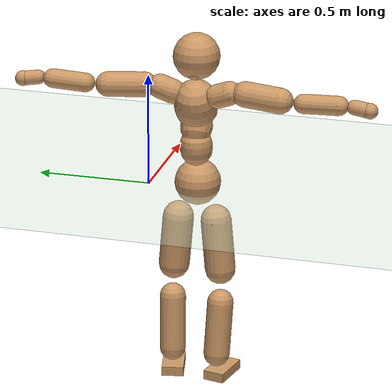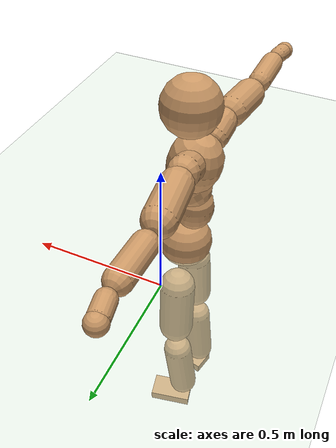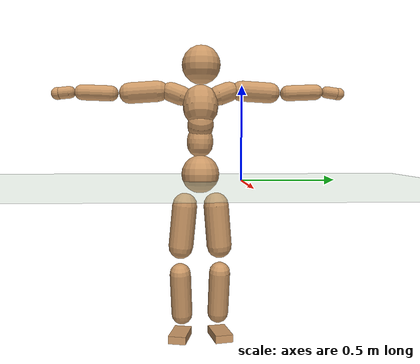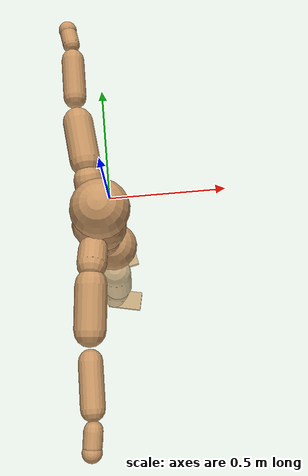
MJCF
<mujoco model="humanoid">
  <compiler coordinate="local"/>
  <default>
    <joint damping="0.0" armature="0.01" stiffness="0.0" limited="true"/>
    <geom conaffinity="1" condim="3" contype="7" margin="0.001" rgba="0.8 0.6 .4 1"/>
  </default>
  <asset>
    <texture type="skybox" builtin="gradient" rgb1=".4 .5 .6" rgb2="0 0 0" width="100" height="100"/>
    <texture builtin="flat" height="1278" mark="cross" markrgb="1 1 1" name="texgeom" random="0.01" rgb1="0.8 0.6 0.4" rgb2="0.8 0.6 0.4" type="cube" width="127"/>
    <texture builtin="checker" height="100" name="texplane" rgb1="0 0 0" rgb2="0.8 0.8 0.8" type="2d" width="100"/>
    <material name="MatPlane" reflectance="0.5" shininess="1" specular="1" texrepeat="60 60" texture="texplane"/>
    <material name="geom" texture="texgeom" texuniform="true"/>
  </asset>
  <worldbody>
    <light cutoff="100" diffuse="1 1 1" dir="-0 0 -1.3" directional="true" exponent="1" pos="0 0 1.3" specular=".1 .1 .1"/>
    <geom conaffinity="1" condim="3" name="floor" pos="0 0 0" rgba="0.8 0.9 0.8 1" size="100 100 .2" type="plane" material="MatPlane"/>
    <body name="Pelvis" pos="0.0006 -0.2204 0.0337">
      <freejoint name="Pelvis"/>
      <geom type="sphere" contype="1" conaffinity="1" density="500" size="0.1008" pos="0.0000 0.0000 0.0000" name="Pelvis"/>
      <body name="L_Hip" pos="-0.0066 0.0795 -0.0932">
        <joint name="L_Hip_x" type="hinge" pos="0 0 0" axis="1 0 0" stiffness="800" damping="80" armature="0.02" range="-180.0000 180.0000"/>
        <joint name="L_Hip_y" type="hinge" pos="0 0 0" axis="0 1 0" stiffness="800" damping="80" armature="0.02" range="-180.0000 180.0000"/>
        <joint name="L_Hip_z" type="hinge" pos="0 0 0" axis="0 0 1" stiffness="800" damping="80" armature="0.02" range="-180.0000 180.0000"/>
        <geom type="capsule" contype="1" conaffinity="1" density="500" fromto="-0.0019 0.0059 -0.0745 -0.0076 0.0237 -0.2981" size="0.0675" name="L_Hip"/>
        <body name="L_Knee" pos="-0.0095 0.0296 -0.3726">
          <joint name="L_Knee_x" type="hinge" pos="0 0 0" axis="1 0 0" stiffness="800" damping="80" armature="0.02" range="-180.0000 180.0000"/>
          <joint name="L_Knee_y" type="hinge" pos="0 0 0" axis="0 1 0" stiffness="800" damping="80" armature="0.02" range="-180.0000 180.0000"/>
          <joint name="L_Knee_z" type="hinge" pos="0 0 0" axis="0 0 1" stiffness="800" damping="80" armature="0.02" range="-180.0000 180.0000"/>
          <geom type="capsule" contype="1" conaffinity="1" density="500" fromto="-0.0097 -0.0024 -0.0787 -0.0388 -0.0094 -0.3147" size="0.0577" name="L_Knee"/>
          <body name="L_Ankle" pos="-0.0485 -0.0118 -0.3934">
            <joint name="L_Ankle_x" type="hinge" pos="0 0 0" axis="1 0 0" stiffness="800" damping="80" armature="0.02" range="-180.0000 180.0000"/>
            <joint name="L_Ankle_y" type="hinge" pos="0 0 0" axis="0 1 0" stiffness="800" damping="80" armature="0.02" range="-180.0000 180.0000"/>
            <joint name="L_Ankle_z" type="hinge" pos="0 0 0" axis="0 0 1" stiffness="800" damping="80" armature="0.02" range="-180.0000 180.0000"/>
            <geom type="box" contype="1" conaffinity="1" density="500" pos="0.0591 0.0127 -0.0282" size="0.085 0.0485 0.0211" quat="0.9944 0.0000 0.0000 0.1060" name="L_Ankle"/>
            <body name="L_Toe" pos="0.1182 0.0255 -0.0564">
              <joint name="L_Toe_x" type="hinge" pos="0 0 0" axis="1 0 0" stiffness="500" damping="50" armature="0.02" range="-180.0000 180.0000"/>
              <joint name="L_Toe_y" type="hinge" pos="0 0 0" axis="0 1 0" stiffness="500" damping="50" armature="0.02" range="-180.0000 180.0000"/>
              <joint name="L_Toe_z" type="hinge" pos="0 0 0" axis="0 0 1" stiffness="500" damping="50" armature="0.02" range="-180.0000 180.0000"/>
              <geom type="box" contype="1" conaffinity="1" density="500" pos="0.0000 0.0000 0.0282" size="0.001 0.0024 0.0011" quat="0.9937 0.0000 0.0000 0.1122" name="L_Toe"/>
            </body>
          </body>
        </body>
      </body>
      <body name="R_Hip" pos="-0.0034 -0.0767 -0.0925">
        <joint name="R_Hip_x" type="hinge" pos="0 0 0" axis="1 0 0" stiffness="800" damping="80" armature="0.02" range="-180.0000 180.0000"/>
        <joint name="R_Hip_y" type="hinge" pos="0 0 0" axis="0 1 0" stiffness="800" damping="80" armature="0.02" range="-180.0000 180.0000"/>
        <joint name="R_Hip_z" type="hinge" pos="0 0 0" axis="0 0 1" stiffness="800" damping="80" armature="0.02" range="-180.0000 180.0000"/>
        <geom type="capsule" contype="1" conaffinity="1" density="500" fromto="-0.0024 -0.0072 -0.0758 -0.0096 -0.0289 -0.3032" size="0.0668" name="R_Hip"/>
        <body name="R_Knee" pos="-0.012 -0.0361 -0.3791">
          <joint name="R_Knee_x" type="hinge" pos="0 0 0" axis="1 0 0" stiffness="800" damping="80" armature="0.02" range="-180.0000 180.0000"/>
          <joint name="R_Knee_y" type="hinge" pos="0 0 0" axis="0 1 0" stiffness="800" damping="80" armature="0.02" range="-180.0000 180.0000"/>
          <joint name="R_Knee_z" type="hinge" pos="0 0 0" axis="0 0 1" stiffness="800" damping="80" armature="0.02" range="-180.0000 180.0000"/>
          <geom type="capsule" contype="1" conaffinity="1" density="500" fromto="-0.0094 0.0028 -0.0789 -0.0378 0.0113 -0.3156" size="0.0578" name="R_Knee"/>
          <body name="R_Ankle" pos="-0.0472 0.0141 -0.3945">
            <joint name="R_Ankle_x" type="hinge" pos="0 0 0" axis="1 0 0" stiffness="800" damping="80" armature="0.02" range="-180.0000 180.0000"/>
            <joint name="R_Ankle_y" type="hinge" pos="0 0 0" axis="0 1 0" stiffness="800" damping="80" armature="0.02" range="-180.0000 180.0000"/>
            <joint name="R_Ankle_z" type="hinge" pos="0 0 0" axis="0 0 1" stiffness="800" damping="80" armature="0.02" range="-180.0000 180.0000"/>
            <geom type="box" contype="1" conaffinity="1" density="500" pos="0.0612 -0.0130 -0.0244" size="0.0859 0.048 0.0213" quat="0.9946 0.0000 0.0000 -0.1042" name="R_Ankle"/>
            <body name="R_Toe" pos="0.1224 -0.0259 -0.0487">
              <joint name="R_Toe_x" type="hinge" pos="0 0 0" axis="1 0 0" stiffness="500" damping="50" armature="0.02" range="-180.0000 180.0000"/>
              <joint name="R_Toe_y" type="hinge" pos="0 0 0" axis="0 1 0" stiffness="500" damping="50" armature="0.02" range="-180.0000 180.0000"/>
              <joint name="R_Toe_z" type="hinge" pos="0 0 0" axis="0 0 1" stiffness="500" damping="50" armature="0.02" range="-180.0000 180.0000"/>
              <geom type="box" contype="1" conaffinity="1" density="500" pos="0.0000 0.0000 0.0260" size="0.0009 0.0024 0.0011" quat="0.9955 0.0000 0.0000 -0.0949" name="R_Toe"/>
            </body>
          </body>
        </body>
      </body>
      <body name="Torso" pos="-0.0264 -0.0023 0.1077">
        <joint name="Torso_x" type="hinge" pos="0 0 0" axis="1 0 0" stiffness="1000" damping="100" armature="0.02" range="-180.0000 180.0000"/>
        <joint name="Torso_y" type="hinge" pos="0 0 0" axis="0 1 0" stiffness="1000" damping="100" armature="0.02" range="-180.0000 180.0000"/>
        <joint name="Torso_z" type="hinge" pos="0 0 0" axis="0 0 1" stiffness="1000" damping="100" armature="0.02" range="-180.0000 180.0000"/>
        <geom type="capsule" contype="1" conaffinity="1" density="500" fromto="-0.0023 0.0018 0.0769 -0.0015 0.0012 0.0513" size="0.069936" name="Torso"/>
        <body name="Spine" pos="-0.0039 0.0031 0.1282">
          <joint name="Spine_x" type="hinge" pos="0 0 0" axis="1 0 0" stiffness="1000" damping="100" armature="0.02" range="-180.0000 180.0000"/>
          <joint name="Spine_y" type="hinge" pos="0 0 0" axis="0 1 0" stiffness="1000" damping="100" armature="0.02" range="-180.0000 180.0000"/>
          <joint name="Spine_z" type="hinge" pos="0 0 0" axis="0 0 1" stiffness="1000" damping="100" armature="0.02" range="-180.0000 180.0000"/>
          <geom type="capsule" contype="1" conaffinity="1" density="500" fromto="0.0184 0.0008 0.0304 0.0123 0.0005 0.0203" size="0.070308" name="Spine"/>
          <body name="Chest" pos="0.0307 0.0013 0.0507">
            <joint name="Chest_x" type="hinge" pos="0 0 0" axis="1 0 0" stiffness="1000" damping="100" armature="0.02" range="-180.0000 180.0000"/>
            <joint name="Chest_y" type="hinge" pos="0 0 0" axis="0 1 0" stiffness="1000" damping="100" armature="0.02" range="-180.0000 180.0000"/>
            <joint name="Chest_z" type="hinge" pos="0 0 0" axis="0 0 1" stiffness="1000" damping="100" armature="0.02" range="-180.0000 180.0000"/>
            <geom type="capsule" contype="1" conaffinity="1" density="500" fromto="-0.0280 -0.0005 0.0940 -0.0186 -0.0004 0.0627" size="0.093837" name="Chest"/>
            <body name="Neck" pos="-0.055 -0.001 0.2225">
              <joint name="Neck_x" type="hinge" pos="0 0 0" axis="1 0 0" stiffness="500" damping="50" armature="0.02" range="-180.0000 180.0000"/>
              <joint name="Neck_y" type="hinge" pos="0 0 0" axis="0 1 0" stiffness="500" damping="50" armature="0.02" range="-180.0000 180.0000"/>
              <joint name="Neck_z" type="hinge" pos="0 0 0" axis="0 0 1" stiffness="500" damping="50" armature="0.02" range="-180.0000 180.0000"/>
              <geom type="capsule" contype="1" conaffinity="1" density="500" fromto="0.0104 0.0007 0.0128 0.0416 0.0029 0.0512" size="0.039711" name="Neck"/>
              <body name="Head" pos="0.052 0.0037 0.064">
                <joint name="Head_x" type="hinge" pos="0 0 0" axis="1 0 0" stiffness="500" damping="50" armature="0.02" range="-180.0000 180.0000"/>
                <joint name="Head_y" type="hinge" pos="0 0 0" axis="0 1 0" stiffness="500" damping="50" armature="0.02" range="-180.0000 180.0000"/>
                <joint name="Head_z" type="hinge" pos="0 0 0" axis="0 0 1" stiffness="500" damping="50" armature="0.02" range="-180.0000 180.0000"/>
                <geom type="sphere" contype="1" conaffinity="1" density="500" size="0.1016" pos="0.0000 0.0000 0.0000" name="Head"/>
              </body>
            </body>
            <body name="L_Thorax" pos="-0.0393 0.0794 0.1249">
              <joint name="L_Thorax_x" type="hinge" pos="0 0 0" axis="1 0 0" stiffness="500" damping="50" armature="0.02" range="-180.0000 180.0000"/>
              <joint name="L_Thorax_y" type="hinge" pos="0 0 0" axis="0 1 0" stiffness="500" damping="50" armature="0.02" range="-180.0000 180.0000"/>
              <joint name="L_Thorax_z" type="hinge" pos="0 0 0" axis="0 0 1" stiffness="500" damping="50" armature="0.02" range="-180.0000 180.0000"/>
              <geom type="capsule" contype="1" conaffinity="1" density="500" fromto="-0.0016 0.0180 0.0068 -0.0066 0.0719 0.0272" size="0.0534" name="L_Thorax"/>
              <body name="L_Shoulder" pos="-0.0082 0.0898 0.034">
                <joint name="L_Shoulder_x" type="hinge" pos="0 0 0" axis="1 0 0" stiffness="500" damping="50" armature="0.02" range="-720.0000 720.0000"/>
                <joint name="L_Shoulder_y" type="hinge" pos="0 0 0" axis="0 1 0" stiffness="500" damping="50" armature="0.02" range="-720.0000 720.0000"/>
                <joint name="L_Shoulder_z" type="hinge" pos="0 0 0" axis="0 0 1" stiffness="500" damping="50" armature="0.02" range="-720.0000 720.0000"/>
                <geom type="capsule" contype="1" conaffinity="1" density="500" fromto="-0.0057 0.0516 -0.0026 -0.0230 0.2065 -0.0105" size="0.055" name="L_Shoulder"/>
                <body name="L_Elbow" pos="-0.0287 0.2582 -0.0131">
                  <joint name="L_Elbow_x" type="hinge" pos="0 0 0" axis="1 0 0" stiffness="500" damping="50" armature="0.02" range="-720.0000 720.0000"/>
                  <joint name="L_Elbow_y" type="hinge" pos="0 0 0" axis="0 1 0" stiffness="500" damping="50" armature="0.02" range="-720.0000 720.0000"/>
                  <joint name="L_Elbow_z" type="hinge" pos="0 0 0" axis="0 0 1" stiffness="500" damping="50" armature="0.02" range="-720.0000 720.0000"/>
                  <geom type="capsule" contype="1" conaffinity="1" density="500" fromto="0.0003 0.0490 0.0019 0.0013 0.1961 0.0077" size="0.0419" name="L_Elbow"/>
                  <body name="L_Wrist" pos="0.0017 0.2452 0.0097">
                    <joint name="L_Wrist_x" type="hinge" pos="0 0 0" axis="1 0 0" stiffness="300" damping="30" armature="0.02" range="-180.0000 180.0000"/>
                    <joint name="L_Wrist_y" type="hinge" pos="0 0 0" axis="0 1 0" stiffness="300" damping="30" armature="0.02" range="-180.0000 180.0000"/>
                    <joint name="L_Wrist_z" type="hinge" pos="0 0 0" axis="0 0 1" stiffness="300" damping="30" armature="0.02" range="-180.0000 180.0000"/>
                    <geom type="capsule" contype="1" conaffinity="1" density="500" fromto="-0.0027 0.0166 -0.0020 -0.0109 0.0664 -0.0081" size="0.0316" name="L_Wrist"/>
                    <body name="L_Hand" pos="-0.0136 0.083 -0.0101">
                      <joint name="L_Hand_x" type="hinge" pos="0 0 0" axis="1 0 0" stiffness="300" damping="30" armature="0.02" range="-180.0000 180.0000"/>
                      <joint name="L_Hand_y" type="hinge" pos="0 0 0" axis="0 1 0" stiffness="300" damping="30" armature="0.02" range="-180.0000 180.0000"/>
                      <joint name="L_Hand_z" type="hinge" pos="0 0 0" axis="0 0 1" stiffness="300" damping="30" armature="0.02" range="-180.0000 180.0000"/>
                      <geom type="sphere" contype="1" conaffinity="1" density="500" size="0.0335" pos="0.0000 0.0000 0.0000" name="L_Hand"/>
                    </body>
                  </body>
                </body>
              </body>
            </body>
            <body name="R_Thorax" pos="-0.0455 -0.0811 0.1226">
              <joint name="R_Thorax_x" type="hinge" pos="0 0 0" axis="1 0 0" stiffness="500" damping="50" armature="0.02" range="-180.0000 180.0000"/>
              <joint name="R_Thorax_y" type="hinge" pos="0 0 0" axis="0 1 0" stiffness="500" damping="50" armature="0.02" range="-180.0000 180.0000"/>
              <joint name="R_Thorax_z" type="hinge" pos="0 0 0" axis="0 0 1" stiffness="500" damping="50" armature="0.02" range="-180.0000 180.0000"/>
              <geom type="capsule" contype="1" conaffinity="1" density="500" fromto="-0.0021 -0.0188 0.0072 -0.0083 -0.0753 0.0287" size="0.0523" name="R_Thorax"/>
              <body name="R_Shoulder" pos="-0.0103 -0.0941 0.0359">
                <joint name="R_Shoulder_x" type="hinge" pos="0 0 0" axis="1 0 0" stiffness="500" damping="50" armature="0.02" range="-720.0000 720.0000"/>
                <joint name="R_Shoulder_y" type="hinge" pos="0 0 0" axis="0 1 0" stiffness="500" damping="50" armature="0.02" range="-720.0000 720.0000"/>
                <joint name="R_Shoulder_z" type="hinge" pos="0 0 0" axis="0 0 1" stiffness="500" damping="50" armature="0.02" range="-720.0000 720.0000"/>
                <geom type="capsule" contype="1" conaffinity="1" density="500" fromto="-0.0046 -0.0513 -0.0032 -0.0184 -0.2052 -0.0126" size="0.0564" name="R_Shoulder"/>
                <body name="R_Elbow" pos="-0.023 -0.2565 -0.0158">
                  <joint name="R_Elbow_x" type="hinge" pos="0 0 0" axis="1 0 0" stiffness="500" damping="50" armature="0.02" range="-720.0000 720.0000"/>
                  <joint name="R_Elbow_y" type="hinge" pos="0 0 0" axis="0 1 0" stiffness="500" damping="50" armature="0.02" range="-720.0000 720.0000"/>
                  <joint name="R_Elbow_z" type="hinge" pos="0 0 0" axis="0 0 1" stiffness="500" damping="50" armature="0.02" range="-720.0000 720.0000"/>
                  <geom type="capsule" contype="1" conaffinity="1" density="500" fromto="-0.0004 -0.0507 0.0019 -0.0015 -0.2027 0.0076" size="0.042" name="R_Elbow"/>
                  <body name="R_Wrist" pos="-0.0019 -0.2534 0.0095">
                    <joint name="R_Wrist_x" type="hinge" pos="0 0 0" axis="1 0 0" stiffness="300" damping="30" armature="0.02" range="-180.0000 180.0000"/>
                    <joint name="R_Wrist_y" type="hinge" pos="0 0 0" axis="0 1 0" stiffness="300" damping="30" armature="0.02" range="-180.0000 180.0000"/>
                    <joint name="R_Wrist_z" type="hinge" pos="0 0 0" axis="0 0 1" stiffness="300" damping="30" armature="0.02" range="-180.0000 180.0000"/>
                    <geom type="capsule" contype="1" conaffinity="1" density="500" fromto="-0.0022 -0.0169 -0.0015 -0.0088 -0.0676 -0.0061" size="0.0325" name="R_Wrist"/>
                    <body name="R_Hand" pos="-0.0111 -0.0845 -0.0077">
                      <joint name="R_Hand_x" type="hinge" pos="0 0 0" axis="1 0 0" stiffness="300" damping="30" armature="0.02" range="-180.0000 180.0000"/>
                      <joint name="R_Hand_y" type="hinge" pos="0 0 0" axis="0 1 0" stiffness="300" damping="30" armature="0.02" range="-180.0000 180.0000"/>
                      <joint name="R_Hand_z" type="hinge" pos="0 0 0" axis="0 0 1" stiffness="300" damping="30" armature="0.02" range="-180.0000 180.0000"/>
                      <geom type="sphere" contype="1" conaffinity="1" density="500" size="0.0340" pos="0.0000 0.0000 0.0000" name="R_Hand"/>
                    </body>
                  </body>
                </body>
              </body>
            </body>
          </body>
        </body>
      </body>
    </body>
  </worldbody>
  <actuator>
    <motor name="L_Hip_x" joint="L_Hip_x" gear="500"/>
    <motor name="L_Hip_y" joint="L_Hip_y" gear="500"/>
    <motor name="L_Hip_z" joint="L_Hip_z" gear="500"/>
    <motor name="L_Knee_x" joint="L_Knee_x" gear="500"/>
    <motor name="L_Knee_y" joint="L_Knee_y" gear="500"/>
    <motor name="L_Knee_z" joint="L_Knee_z" gear="500"/>
    <motor name="L_Ankle_x" joint="L_Ankle_x" gear="500"/>
    <motor name="L_Ankle_y" joint="L_Ankle_y" gear="500"/>
    <motor name="L_Ankle_z" joint="L_Ankle_z" gear="500"/>
    <motor name="L_Toe_x" joint="L_Toe_x" gear="500"/>
    <motor name="L_Toe_y" joint="L_Toe_y" gear="500"/>
    <motor name="L_Toe_z" joint="L_Toe_z" gear="500"/>
    <motor name="R_Hip_x" joint="R_Hip_x" gear="500"/>
    <motor name="R_Hip_y" joint="R_Hip_y" gear="500"/>
    <motor name="R_Hip_z" joint="R_Hip_z" gear="500"/>
    <motor name="R_Knee_x" joint="R_Knee_x" gear="500"/>
    <motor name="R_Knee_y" joint="R_Knee_y" gear="500"/>
    <motor name="R_Knee_z" joint="R_Knee_z" gear="500"/>
    <motor name="R_Ankle_x" joint="R_Ankle_x" gear="500"/>
    <motor name="R_Ankle_y" joint="R_Ankle_y" gear="500"/>
    <motor name="R_Ankle_z" joint="R_Ankle_z" gear="500"/>
    <motor name="R_Toe_x" joint="R_Toe_x" gear="500"/>
    <motor name="R_Toe_y" joint="R_Toe_y" gear="500"/>
    <motor name="R_Toe_z" joint="R_Toe_z" gear="500"/>
    <motor name="Torso_x" joint="Torso_x" gear="500"/>
    <motor name="Torso_y" joint="Torso_y" gear="500"/>
    <motor name="Torso_z" joint="Torso_z" gear="500"/>
    <motor name="Spine_x" joint="Spine_x" gear="500"/>
    <motor name="Spine_y" joint="Spine_y" gear="500"/>
    <motor name="Spine_z" joint="Spine_z" gear="500"/>
    <motor name="Chest_x" joint="Chest_x" gear="500"/>
    <motor name="Chest_y" joint="Chest_y" gear="500"/>
    <motor name="Chest_z" joint="Chest_z" gear="500"/>
    <motor name="Neck_x" joint="Neck_x" gear="500"/>
    <motor name="Neck_y" joint="Neck_y" gear="500"/>
    <motor name="Neck_z" joint="Neck_z" gear="500"/>
    <motor name="Head_x" joint="Head_x" gear="500"/>
    <motor name="Head_y" joint="Head_y" gear="500"/>
    <motor name="Head_z" joint="Head_z" gear="500"/>
    <motor name="L_Thorax_x" joint="L_Thorax_x" gear="500"/>
    <motor name="L_Thorax_y" joint="L_Thorax_y" gear="500"/>
    <motor name="L_Thorax_z" joint="L_Thorax_z" gear="500"/>
    <motor name="L_Shoulder_x" joint="L_Shoulder_x" gear="500"/>
    <motor name="L_Shoulder_y" joint="L_Shoulder_y" gear="500"/>
    <motor name="L_Shoulder_z" joint="L_Shoulder_z" gear="500"/>
    <motor name="L_Elbow_x" joint="L_Elbow_x" gear="500"/>
    <motor name="L_Elbow_y" joint="L_Elbow_y" gear="500"/>
    <motor name="L_Elbow_z" joint="L_Elbow_z" gear="500"/>
    <motor name="L_Wrist_x" joint="L_Wrist_x" gear="500"/>
    <motor name="L_Wrist_y" joint="L_Wrist_y" gear="500"/>
    <motor name="L_Wrist_z" joint="L_Wrist_z" gear="500"/>
    <motor name="L_Hand_x" joint="L_Hand_x" gear="500"/>
    <motor name="L_Hand_y" joint="L_Hand_y" gear="500"/>
    <motor name="L_Hand_z" joint="L_Hand_z" gear="500"/>
    <motor name="R_Thorax_x" joint="R_Thorax_x" gear="500"/>
    <motor name="R_Thorax_y" joint="R_Thorax_y" gear="500"/>
    <motor name="R_Thorax_z" joint="R_Thorax_z" gear="500"/>
    <motor name="R_Shoulder_x" joint="R_Shoulder_x" gear="500"/>
    <motor name="R_Shoulder_y" joint="R_Shoulder_y" gear="500"/>
    <motor name="R_Shoulder_z" joint="R_Shoulder_z" gear="500"/>
    <motor name="R_Elbow_x" joint="R_Elbow_x" gear="500"/>
    <motor name="R_Elbow_y" joint="R_Elbow_y" gear="500"/>
    <motor name="R_Elbow_z" joint="R_Elbow_z" gear="500"/>
    <motor name="R_Wrist_x" joint="R_Wrist_x" gear="500"/>
    <motor name="R_Wrist_y" joint="R_Wrist_y" gear="500"/>
    <motor name="R_Wrist_z" joint="R_Wrist_z" gear="500"/>
    <motor name="R_Hand_x" joint="R_Hand_x" gear="500"/>
    <motor name="R_Hand_y" joint="R_Hand_y" gear="500"/>
    <motor name="R_Hand_z" joint="R_Hand_z" gear="500"/>
  </actuator>
  <contact>
    <exclude body1="Torso" body2="Chest"/>
    <exclude body1="Head" body2="Chest"/>
    <exclude body1="R_Knee" body2="R_Toe"/>
    <exclude body1="R_Knee" body2="L_Ankle"/>
    <exclude body1="R_Knee" body2="L_Toe"/>
    <exclude body1="L_Knee" body2="L_Toe"/>
    <exclude body1="L_Knee" body2="R_Ankle"/>
    <exclude body1="L_Knee" body2="R_Toe"/>
    <exclude body1="L_Shoulder" body2="Chest"/>
    <exclude body1="R_Shoulder" body2="Chest"/>
  </contact>
  <sensor/>
  <size njmax="700" nconmax="700"/>
</mujoco>
